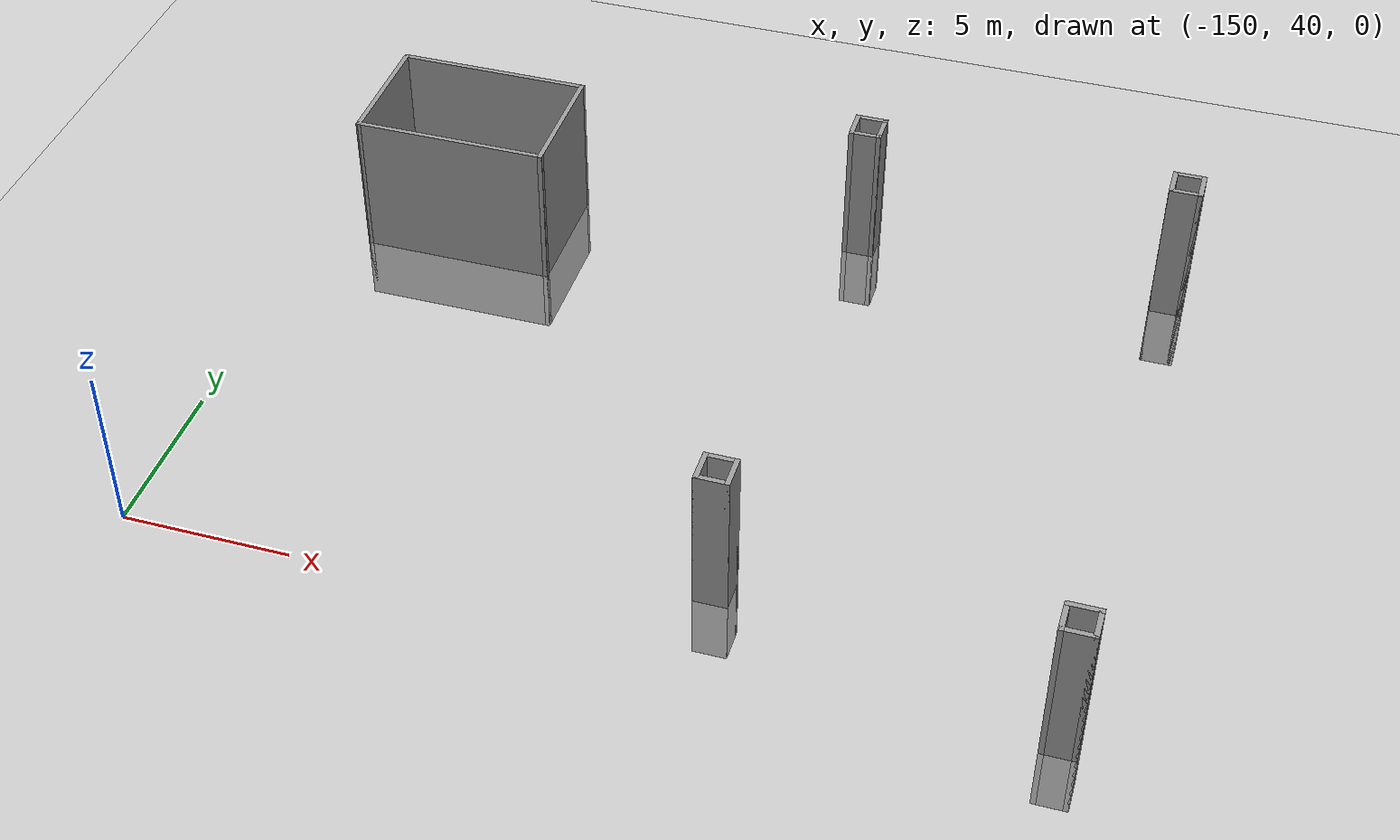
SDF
<sdf version="1.6">
 <world name="default">
  <model name="ground_plane">
   <static>1</static>
   <link name="link">
    <collision name="collision">
     <geometry><plane><normal>0 0 1</normal><size>320 320</size></plane></geometry>
     <surface>
      <contact><collide_bitmask>65535</collide_bitmask></contact>
      <friction><ode><mu>100</mu><mu2>50</mu2></ode></friction>
     </surface>
    </collision>
    <visual name="visual">
     <cast_shadows>0</cast_shadows>
     <geometry><plane><normal>0 0 1</normal><size>320 320</size></plane></geometry>
     <material>
      <script><uri>file://media/materials/scripts/gazebo.material</uri><name>Gazebo/Grey</name></script>
     </material>
    </visual>
   </link>
  </model>
  <model name="base4x6_8_clone_2">
   <pose>-145.312 55.4675 0 0 -0 0</pose>
   <link name="Wall_23">
    <collision name="Wall_23_Collision">
     <geometry><box><size>4 0.15 6.555</size></box></geometry>
     <pose>0 0 1.25 0 -0 0</pose>
    </collision>
    <visual name="Wall_23_Visual">
     <pose>0 0 1.25 0 -0 0</pose>
     <geometry><box><size>4 0.15 6.555</size></box></geometry>
     <material>
      <script><uri>file://media/materials/scripts/gazebo.material</uri><name>Gazebo/Grey</name></script>
      <ambient>1 1 1 1</ambient>
     </material>
     <meta><layer>0</layer></meta>
    </visual>
    <pose>-2.925 0 0 0 -0 -1.5708</pose>
   </link>
   <link name="Wall_24">
    <collision name="Wall_24_Collision">
     <geometry><box><size>6 0.15 6.555</size></box></geometry>
     <pose>0 0 1.25 0 -0 0</pose>
    </collision>
    <visual name="Wall_24_Visual">
     <pose>0 0 1.25 0 -0 0</pose>
     <geometry><box><size>6 0.15 6.555</size></box></geometry>
     <material>
      <script><uri>file://media/materials/scripts/gazebo.material</uri><name>Gazebo/Grey</name></script>
      <ambient>1 1 1 1</ambient>
     </material>
     <meta><layer>0</layer></meta>
    </visual>
    <pose>-0 -1.925 0 0 -0 0</pose>
   </link>
   <link name="Wall_25">
    <collision name="Wall_25_Collision">
     <geometry><box><size>4 0.15 6.555</size></box></geometry>
     <pose>0 0 1.25 0 -0 0</pose>
    </collision>
    <visual name="Wall_25_Visual">
     <pose>0 0 1.25 0 -0 0</pose>
     <geometry><box><size>4 0.15 6.555</size></box></geometry>
     <material>
      <script><uri>file://media/materials/scripts/gazebo.material</uri><name>Gazebo/Grey</name></script>
      <ambient>1 1 1 1</ambient>
     </material>
     <meta><layer>0</layer></meta>
    </visual>
    <pose>2.925 0 0 0 -0 1.5708</pose>
   </link>
   <link name="Wall_26">
    <collision name="Wall_26_Collision">
     <geometry><box><size>6 0.15 6.555</size></box></geometry>
     <pose>0 0 1.25 0 -0 0</pose>
    </collision>
    <visual name="Wall_26_Visual">
     <pose>0 0 1.25 0 -0 0</pose>
     <geometry><box><size>6 0.15 6.555</size></box></geometry>
     <material>
      <script><uri>file://media/materials/scripts/gazebo.material</uri><name>Gazebo/Grey</name></script>
      <ambient>1 1 1 1</ambient>
     </material>
     <meta><layer>0</layer></meta>
    </visual>
    <pose>-0 1.925 0 0 -0 3.14159</pose>
   </link>
   <static>1</static>
  </model>
  <model name="box_1mx1m_15_clone_3">
   <pose>-123.652 57.8026 0 0 -0 0</pose>
   <link name="Wall_10">
    <collision name="Wall_10_Collision">
     <geometry><box><size>1 0.15 6.555</size></box></geometry>
     <pose>0 0 1.25 0 -0 0</pose>
    </collision>
    <visual name="Wall_10_Visual">
     <pose>0 0 1.25 0 -0 0</pose>
     <geometry><box><size>1 0.15 6.555</size></box></geometry>
     <material>
      <script><uri>file://media/materials/scripts/gazebo.material</uri><name>Gazebo/Grey</name></script>
      <ambient>1 1 1 1</ambient>
     </material>
     <meta><layer>0</layer></meta>
    </visual>
    <pose>-0.425 0 0 0 -0 -1.5708</pose>
   </link>
   <link name="Wall_11">
    <collision name="Wall_11_Collision">
     <geometry><box><size>1 0.15 6.555</size></box></geometry>
     <pose>0 0 1.25 0 -0 0</pose>
    </collision>
    <visual name="Wall_11_Visual">
     <pose>0 0 1.25 0 -0 0</pose>
     <geometry><box><size>1 0.15 6.555</size></box></geometry>
     <material>
      <script><uri>file://media/materials/scripts/gazebo.material</uri><name>Gazebo/Grey</name></script>
      <ambient>1 1 1 1</ambient>
     </material>
     <meta><layer>0</layer></meta>
    </visual>
    <pose>0 -0.425 0 0 -0 0</pose>
   </link>
   <link name="Wall_12">
    <collision name="Wall_12_Collision">
     <geometry><box><size>1 0.15 6.555</size></box></geometry>
     <pose>0 0 1.25 0 -0 0</pose>
    </collision>
    <visual name="Wall_12_Visual">
     <pose>0 0 1.25 0 -0 0</pose>
     <geometry><box><size>1 0.15 6.555</size></box></geometry>
     <material>
      <script><uri>file://media/materials/scripts/gazebo.material</uri><name>Gazebo/Grey</name></script>
      <ambient>1 1 1 1</ambient>
     </material>
     <meta><layer>0</layer></meta>
    </visual>
    <pose>0.425 0 0 0 -0 1.5708</pose>
   </link>
   <link name="Wall_13">
    <collision name="Wall_13_Collision">
     <geometry><box><size>1 0.15 6.555</size></box></geometry>
     <pose>0 0 1.25 0 -0 0</pose>
    </collision>
    <visual name="Wall_13_Visual">
     <pose>0 0 1.25 0 -0 0</pose>
     <geometry><box><size>1 0.15 6.555</size></box></geometry>
     <material>
      <script><uri>file://media/materials/scripts/gazebo.material</uri><name>Gazebo/Grey</name></script>
      <ambient>1 1 1 1</ambient>
     </material>
     <meta><layer>0</layer></meta>
    </visual>
    <pose>0 0.425 0 0 -0 3.14159</pose>
   </link>
   <static>1</static>
  </model>
  <model name="box_1mx1m_15_clone_4">
   <pose>-123.742 39.6571 0 0 -0 0</pose>
   <link name="Wall_10">
    <collision name="Wall_10_Collision">
     <geometry><box><size>1 0.15 6.555</size></box></geometry>
     <pose>0 0 1.25 0 -0 0</pose>
    </collision>
    <visual name="Wall_10_Visual">
     <pose>0 0 1.25 0 -0 0</pose>
     <geometry><box><size>1 0.15 6.555</size></box></geometry>
     <material>
      <script><uri>file://media/materials/scripts/gazebo.material</uri><name>Gazebo/Grey</name></script>
      <ambient>1 1 1 1</ambient>
     </material>
     <meta><layer>0</layer></meta>
    </visual>
    <pose>-0.425 0 0 0 -0 -1.5708</pose>
   </link>
   <link name="Wall_11">
    <collision name="Wall_11_Collision">
     <geometry><box><size>1 0.15 6.555</size></box></geometry>
     <pose>0 0 1.25 0 -0 0</pose>
    </collision>
    <visual name="Wall_11_Visual">
     <pose>0 0 1.25 0 -0 0</pose>
     <geometry><box><size>1 0.15 6.555</size></box></geometry>
     <material>
      <script><uri>file://media/materials/scripts/gazebo.material</uri><name>Gazebo/Grey</name></script>
      <ambient>1 1 1 1</ambient>
     </material>
     <meta><layer>0</layer></meta>
    </visual>
    <pose>0 -0.425 0 0 -0 0</pose>
   </link>
   <link name="Wall_12">
    <collision name="Wall_12_Collision">
     <geometry><box><size>1 0.15 6.555</size></box></geometry>
     <pose>0 0 1.25 0 -0 0</pose>
    </collision>
    <visual name="Wall_12_Visual">
     <pose>0 0 1.25 0 -0 0</pose>
     <geometry><box><size>1 0.15 6.555</size></box></geometry>
     <material>
      <script><uri>file://media/materials/scripts/gazebo.material</uri><name>Gazebo/Grey</name></script>
      <ambient>1 1 1 1</ambient>
     </material>
     <meta><layer>0</layer></meta>
    </visual>
    <pose>0.425 0 0 0 -0 1.5708</pose>
   </link>
   <link name="Wall_13">
    <collision name="Wall_13_Collision">
     <geometry><box><size>1 0.15 6.555</size></box></geometry>
     <pose>0 0 1.25 0 -0 0</pose>
    </collision>
    <visual name="Wall_13_Visual">
     <pose>0 0 1.25 0 -0 0</pose>
     <geometry><box><size>1 0.15 6.555</size></box></geometry>
     <material>
      <script><uri>file://media/materials/scripts/gazebo.material</uri><name>Gazebo/Grey</name></script>
      <ambient>1 1 1 1</ambient>
     </material>
     <meta><layer>0</layer></meta>
    </visual>
    <pose>0 0.425 0 0 -0 3.14159</pose>
   </link>
   <static>1</static>
  </model>
  <model name="box_1mx1m_15_clone_2_clone_0">
   <pose>-133.343 57.905 0 0 -0 0</pose>
   <link name="Wall_10">
    <collision name="Wall_10_Collision">
     <geometry><box><size>1 0.15 6.555</size></box></geometry>
     <pose>0 0 1.25 0 -0 0</pose>
    </collision>
    <visual name="Wall_10_Visual">
     <pose>0 0 1.25 0 -0 0</pose>
     <geometry><box><size>1 0.15 6.555</size></box></geometry>
     <material>
      <script><uri>file://media/materials/scripts/gazebo.material</uri><name>Gazebo/Grey</name></script>
      <ambient>1 1 1 1</ambient>
     </material>
     <meta><layer>0</layer></meta>
    </visual>
    <pose>-0.425 0 0 0 -0 -1.5708</pose>
   </link>
   <link name="Wall_11">
    <collision name="Wall_11_Collision">
     <geometry><box><size>1 0.15 6.555</size></box></geometry>
     <pose>0 0 1.25 0 -0 0</pose>
    </collision>
    <visual name="Wall_11_Visual">
     <pose>0 0 1.25 0 -0 0</pose>
     <geometry><box><size>1 0.15 6.555</size></box></geometry>
     <material>
      <script><uri>file://media/materials/scripts/gazebo.material</uri><name>Gazebo/Grey</name></script>
      <ambient>1 1 1 1</ambient>
     </material>
     <meta><layer>0</layer></meta>
    </visual>
    <pose>0 -0.425 0 0 -0 0</pose>
   </link>
   <link name="Wall_12">
    <collision name="Wall_12_Collision">
     <geometry><box><size>1 0.15 6.555</size></box></geometry>
     <pose>0 0 1.25 0 -0 0</pose>
    </collision>
    <visual name="Wall_12_Visual">
     <pose>0 0 1.25 0 -0 0</pose>
     <geometry><box><size>1 0.15 6.555</size></box></geometry>
     <material>
      <script><uri>file://media/materials/scripts/gazebo.material</uri><name>Gazebo/Grey</name></script>
      <ambient>1 1 1 1</ambient>
     </material>
     <meta><layer>0</layer></meta>
    </visual>
    <pose>0.425 0 0 0 -0 1.5708</pose>
   </link>
   <link name="Wall_13">
    <collision name="Wall_13_Collision">
     <geometry><box><size>1 0.15 6.555</size></box></geometry>
     <pose>0 0 1.25 0 -0 0</pose>
    </collision>
    <visual name="Wall_13_Visual">
     <pose>0 0 1.25 0 -0 0</pose>
     <geometry><box><size>1 0.15 6.555</size></box></geometry>
     <material>
      <script><uri>file://media/materials/scripts/gazebo.material</uri><name>Gazebo/Grey</name></script>
      <ambient>1 1 1 1</ambient>
     </material>
     <meta><layer>0</layer></meta>
    </visual>
    <pose>0 0.425 0 0 -0 3.14159</pose>
   </link>
   <static>1</static>
  </model>
  <model name="box_1mx1m_15_clone_2_clone_1">
   <pose>-133.523 42.1053 0 0 -0 0</pose>
   <link name="Wall_10">
    <collision name="Wall_10_Collision">
     <geometry><box><size>1 0.15 6.555</size></box></geometry>
     <pose>0 0 1.25 0 -0 0</pose>
    </collision>
    <visual name="Wall_10_Visual">
     <pose>0 0 1.25 0 -0 0</pose>
     <geometry><box><size>1 0.15 6.555</size></box></geometry>
     <material>
      <script><uri>file://media/materials/scripts/gazebo.material</uri><name>Gazebo/Grey</name></script>
      <ambient>1 1 1 1</ambient>
     </material>
     <meta><layer>0</layer></meta>
    </visual>
    <pose>-0.425 0 0 0 -0 -1.5708</pose>
   </link>
   <link name="Wall_11">
    <collision name="Wall_11_Collision">
     <geometry><box><size>1 0.15 6.555</size></box></geometry>
     <pose>0 0 1.25 0 -0 0</pose>
    </collision>
    <visual name="Wall_11_Visual">
     <pose>0 0 1.25 0 -0 0</pose>
     <geometry><box><size>1 0.15 6.555</size></box></geometry>
     <material>
      <script><uri>file://media/materials/scripts/gazebo.material</uri><name>Gazebo/Grey</name></script>
      <ambient>1 1 1 1</ambient>
     </material>
     <meta><layer>0</layer></meta>
    </visual>
    <pose>0 -0.425 0 0 -0 0</pose>
   </link>
   <link name="Wall_12">
    <collision name="Wall_12_Collision">
     <geometry><box><size>1 0.15 6.555</size></box></geometry>
     <pose>0 0 1.25 0 -0 0</pose>
    </collision>
    <visual name="Wall_12_Visual">
     <pose>0 0 1.25 0 -0 0</pose>
     <geometry><box><size>1 0.15 6.555</size></box></geometry>
     <material>
      <script><uri>file://media/materials/scripts/gazebo.material</uri><name>Gazebo/Grey</name></script>
      <ambient>1 1 1 1</ambient>
     </material>
     <meta><layer>0</layer></meta>
    </visual>
    <pose>0.425 0 0 0 -0 1.5708</pose>
   </link>
   <link name="Wall_13">
    <collision name="Wall_13_Collision">
     <geometry><box><size>1 0.15 6.555</size></box></geometry>
     <pose>0 0 1.25 0 -0 0</pose>
    </collision>
    <visual name="Wall_13_Visual">
     <pose>0 0 1.25 0 -0 0</pose>
     <geometry><box><size>1 0.15 6.555</size></box></geometry>
     <material>
      <script><uri>file://media/materials/scripts/gazebo.material</uri><name>Gazebo/Grey</name></script>
      <ambient>1 1 1 1</ambient>
     </material>
     <meta><layer>0</layer></meta>
    </visual>
    <pose>0 0.425 0 0 -0 3.14159</pose>
   </link>
   <static>1</static>
  </model>
 </world>
</sdf>
